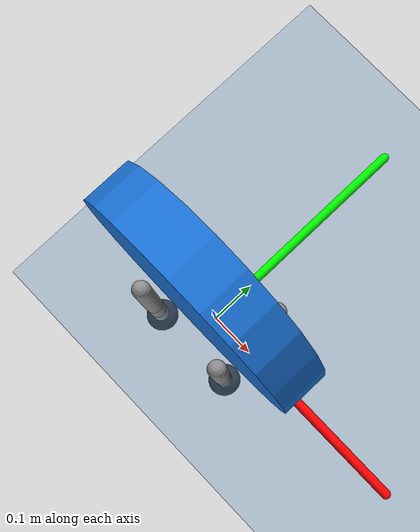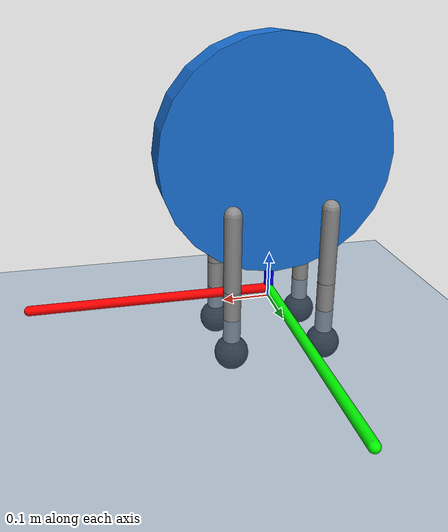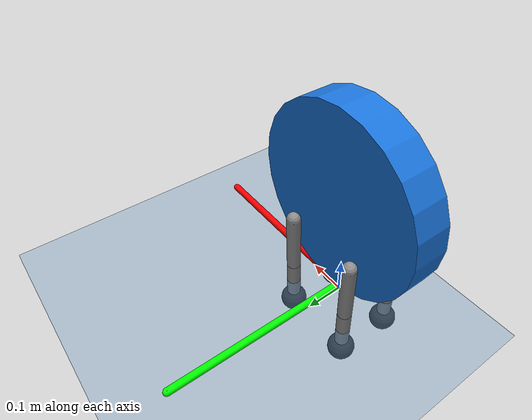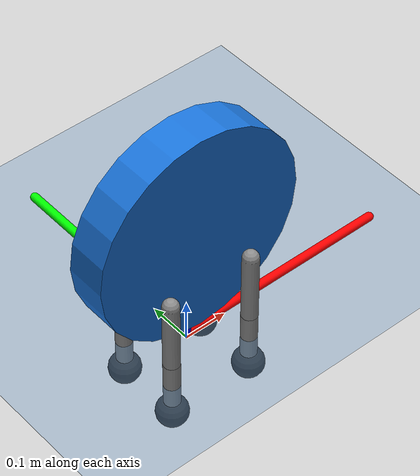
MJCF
<mujoco model="disk_quadruped_extreme">
  <compiler angle="radian"/>

  <option timestep="0.004" integrator="Euler" cone="pyramidal">
    <flag contact="enable"/>
  </option>

  <asset>
    <texture type="skybox" builtin="gradient" rgb1=".3 .5 .7" rgb2="0 0 0" width="512" height="512"/>
    <texture name="grid" type="2d" builtin="checker" width="512" height="512" rgb1=".2 .4 .6" rgb2=".4 .6 .8"/>
    <material name="grid" texture="grid" texrepeat="1 1" texuniform="true" reflectance="0"/>
  </asset>

  <default>
    <joint damping="0.06" armature="0.002" limited="true"/>
    <geom friction="1.0 0.02 0.001" solref="0.01 1" solimp="0.9 0.95 0.001"/>
    <default class="disk">
      <geom type="cylinder" size="0.24 0.045" rgba="0.1 0.45 0.85 1"
            density="450" condim="4" friction="1.2 0.04 0.002"/>
    </default>
    <default class="leg">
      <geom type="capsule" size="0.018" rgba="0.55 0.55 0.55 1"
            density="350" contype="0" conaffinity="0"/>
    </default>
    <default class="foot">
      <geom type="sphere" size="0.035" rgba="0.15 0.15 0.15 1"
            density="500" condim="4" friction="1.4 0.04 0.002"/>
    </default>
  </default>

  <actuator>
    <position name="fl_hip_abd_act" joint="fl_hip_abd" kp="55" kv="1.2" ctrlrange="-0.9 0.9" forcerange="-8 8"/>
    <position name="fl_hip_flex_act" joint="fl_hip_flex" kp="70" kv="1.4" ctrlrange="-3.1 3.1" forcerange="-8 8"/>
    <position name="fl_knee_act" joint="fl_knee" kp="55" kv="1.0" ctrlrange="-2.4 2.4" forcerange="-8 8"/>
    <position name="fr_hip_abd_act" joint="fr_hip_abd" kp="55" kv="1.2" ctrlrange="-0.9 0.9" forcerange="-8 8"/>
    <position name="fr_hip_flex_act" joint="fr_hip_flex" kp="70" kv="1.4" ctrlrange="-3.1 3.1" forcerange="-8 8"/>
    <position name="fr_knee_act" joint="fr_knee" kp="55" kv="1.0" ctrlrange="-2.4 2.4" forcerange="-8 8"/>
    <position name="hl_hip_abd_act" joint="hl_hip_abd" kp="55" kv="1.2" ctrlrange="-0.9 0.9" forcerange="-8 8"/>
    <position name="hl_hip_flex_act" joint="hl_hip_flex" kp="70" kv="1.4" ctrlrange="-3.1 3.1" forcerange="-8 8"/>
    <position name="hl_knee_act" joint="hl_knee" kp="55" kv="1.0" ctrlrange="-2.4 2.4" forcerange="-8 8"/>
    <position name="hr_hip_abd_act" joint="hr_hip_abd" kp="55" kv="1.2" ctrlrange="-0.9 0.9" forcerange="-8 8"/>
    <position name="hr_hip_flex_act" joint="hr_hip_flex" kp="70" kv="1.4" ctrlrange="-3.1 3.1" forcerange="-8 8"/>
    <position name="hr_knee_act" joint="hr_knee" kp="55" kv="1.0" ctrlrange="-2.4 2.4" forcerange="-8 8"/>
  </actuator>

  <keyframe>
    <key name="stand"
         qpos="0 0 0.408 1 0 0 0
               0 0 0
               0 0 0
               0 0 0
               0 0 0"
         ctrl="0 0 0
               0 0 0
               0 0 0
               0 0 0"/>
    <key name="walk_stand"
         qpos="0 0 0.408 1 0 0 0
               0.3 0.45 -0.9
               -0.3 0.45 -0.9
               0.3 0.45 -0.9
               -0.3 0.45 -0.9"
         ctrl="0.3 0.45 -0.9
               -0.3 0.45 -0.9
               0.3 0.45 -0.9
               -0.3 0.45 -0.9"/>
    <key name="folded"
         qpos="0 0 0.24 1 0 0 0
               0.0 -2.60 2.4
               0.0 -2.60 2.4
               0.0 2.60 -2.4
               0.0 2.60 -2.4"
         ctrl="0.0 -2.60 2.4
               0.0 -2.60 2.4
               0.0 2.60 -2.4
               0.0 2.60 -2.4"/>
  </keyframe>

  <worldbody>
    <light name="spotlight" mode="targetbodycom" target="disk_torso"
           diffuse="0.9 0.9 0.9" specular="0.3 0.3 0.3" pos="0 -4 4" cutoff="100"/>
    <geom name="floor" type="plane" size="0 0 .05" material="grid"
          friction="1.2 0.03 0.001" condim="3" contype="1" conaffinity="1"/>
    <camera name="side_cam" mode="targetbody" target="disk_torso" pos="0 -1.6 0.35"/>
    <site name="world_x_axis" type="capsule" fromto="0 0 0.02 0.5 0 0.02" size="0.01" rgba="1 0 0 1"/>
    <site name="world_y_axis" type="capsule" fromto="0 0 0.02 0 0.5 0.02" size="0.01" rgba="0 1 0 1"/>
    <site name="world_z_axis" type="capsule" fromto="0 0 0.02 0 0 0.52" size="0.01" rgba="0 0 1 1"/>

    <body name="disk_torso" pos="0 0 0.32">
      <freejoint name="root"/>
      <geom name="torso_disk" class="disk" type="cylinder" size="0.24 0.045" quat="0.7071068 0.7071068 0 0"/>

      <body name="fl_hip_anchor" pos="0.10 0.075 -0.10">
        <geom type="sphere" size="0.005" rgba="0 0 0 0" mass="0.001" contype="0" conaffinity="0"/>
        <joint name="fl_hip_abd" type="hinge" axis="1 0 0" range="-0.9 0.9"/>
        <body name="fl_upper" pos="0 0 0">
          <joint name="fl_hip_flex" type="hinge" axis="0 1 0" range="-3.1 3.1"/>
          <geom class="leg" fromto="0 0 0 0 0 -0.16"/>
          <body name="fl_lower" pos="0 0 -0.16">
            <joint name="fl_knee" type="hinge" axis="0 1 0" range="-2.4 2.4"/>
            <geom class="leg" fromto="0 0 0 0 0 -0.14"/>
            <geom name="fl_foot" class="foot" pos="0 0 -0.14"/>
          </body>
        </body>
      </body>

      <body name="fr_hip_anchor" pos="0.10 -0.075 -0.10">
        <geom type="sphere" size="0.005" rgba="0 0 0 0" mass="0.001" contype="0" conaffinity="0"/>
        <joint name="fr_hip_abd" type="hinge" axis="1 0 0" range="-0.9 0.9"/>
        <body name="fr_upper" pos="0 0 0">
          <joint name="fr_hip_flex" type="hinge" axis="0 1 0" range="-3.1 3.1"/>
          <geom class="leg" fromto="0 0 0 0 0 -0.16"/>
          <body name="fr_lower" pos="0 0 -0.16">
            <joint name="fr_knee" type="hinge" axis="0 1 0" range="-2.4 2.4"/>
            <geom class="leg" fromto="0 0 0 0 0 -0.14"/>
            <geom name="fr_foot" class="foot" pos="0 0 -0.14"/>
          </body>
        </body>
      </body>

      <body name="hl_hip_anchor" pos="-0.10 0.075 -0.10">
        <geom type="sphere" size="0.005" rgba="0 0 0 0" mass="0.001" contype="0" conaffinity="0"/>
        <joint name="hl_hip_abd" type="hinge" axis="1 0 0" range="-0.9 0.9"/>
        <body name="hl_upper" pos="0 0 0">
          <joint name="hl_hip_flex" type="hinge" axis="0 1 0" range="-3.1 3.1"/>
          <geom class="leg" fromto="0 0 0 0 0 -0.16"/>
          <body name="hl_lower" pos="0 0 -0.16">
            <joint name="hl_knee" type="hinge" axis="0 1 0" range="-2.4 2.4"/>
            <geom class="leg" fromto="0 0 0 0 0 -0.14"/>
            <geom name="hl_foot" class="foot" pos="0 0 -0.14"/>
          </body>
        </body>
      </body>

      <body name="hr_hip_anchor" pos="-0.10 -0.075 -0.10">
        <geom type="sphere" size="0.005" rgba="0 0 0 0" mass="0.001" contype="0" conaffinity="0"/>
        <joint name="hr_hip_abd" type="hinge" axis="1 0 0" range="-0.9 0.9"/>
        <body name="hr_upper" pos="0 0 0">
          <joint name="hr_hip_flex" type="hinge" axis="0 1 0" range="-3.1 3.1"/>
          <geom class="leg" fromto="0 0 0 0 0 -0.16"/>
          <body name="hr_lower" pos="0 0 -0.16">
            <joint name="hr_knee" type="hinge" axis="0 1 0" range="-2.4 2.4"/>
            <geom class="leg" fromto="0 0 0 0 0 -0.14"/>
            <geom name="hr_foot" class="foot" pos="0 0 -0.14"/>
          </body>
        </body>
      </body>
    </body>
  </worldbody>
</mujoco>
